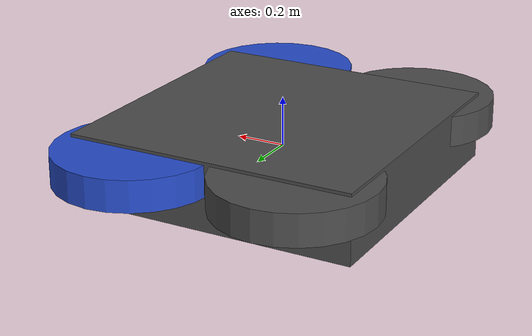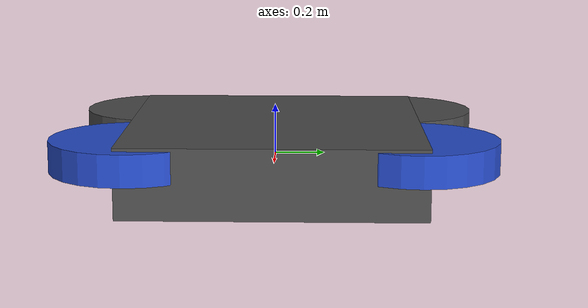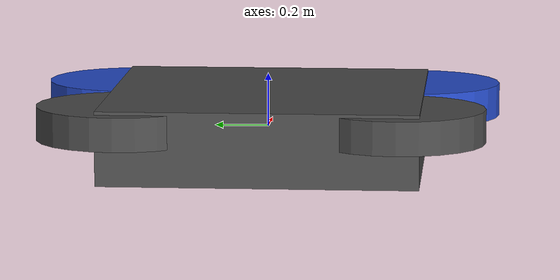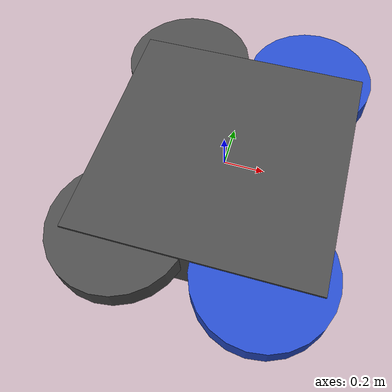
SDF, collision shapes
<?xml version="1.0" ?>
<sdf version="1.5">
  <model name='mbzirc_2_sensors'>
    <include>
      <uri>model://mbzirc_2</uri>
    </include>

    <include>
      <uri>model://real_sense_d435i</uri>
      <pose>0 0.25 -0.1 1.57079633 1.57079633 0</pose>
    </include>
    <joint name="depth_camera_joint" type="fixed">
      <parent>mbzirc_2::base_link</parent>
      <child>real_sense_d435i::link</child>
      <axis>
        <xyz>0 0 1</xyz>
        <limit>
          <upper>0</upper>
          <lower>0</lower>
        </limit>
      </axis>
    </joint>

    <include>
      <uri>model://Ocam</uri>
      <pose>0 0 -0.1 0 1.57079633 0</pose>
    </include>
    <joint name="camera_joint" type="fixed">
      <parent>mbzirc_2::base_link</parent>
      <child>Ocam::link</child>
      <axis>
        <xyz>0 0 1</xyz>
        <limit>
          <upper>0</upper>
          <lower>0</lower>
        </limit>
      </axis>
    </joint>

    <include>
      <uri>model://lite_lidar_left</uri>
      <pose>0 0.35 -0.1 0 0 0</pose>
    </include>
    <joint name="lidar_left_joint" type="fixed">
      <parent>mbzirc_2::base_link</parent>
      <child>lite_lidar_left::link</child>
      <axis>
        <xyz>0 0 1</xyz>
        <limit>
          <upper>0</upper>
          <lower>0</lower>
        </limit>
      </axis>
    </joint>

    <include>
      <uri>model://lite_lidar_right</uri>
      <pose>0 -0.35 -0.1 0 0 0</pose>
    </include>
    <joint name="lidar_right_joint" type="fixed">
      <parent>mbzirc_2::base_link</parent>
      <child>lite_lidar_right::link</child>
      <axis>
        <xyz>0 0 1</xyz>
        <limit>
          <upper>0</upper>
          <lower>0</lower>
        </limit>
      </axis>
    </joint>

  </model>
</sdf>

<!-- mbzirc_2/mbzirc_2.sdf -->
<sdf version='1.6'>
  <model name='mbzirc_2'>
    <link name='base_link'>
      <pose frame=''>0 0 0 0 -0 0</pose>
      <inertial>
        <pose frame=''>0 0 0 0 -0 0</pose>
        <mass>1.5</mass>
        <inertia>
          <ixx>0.0728125</ixx>
          <ixy>0</ixy>
          <ixz>0</ixz>
          <iyy>0.0728125</iyy>
          <iyz>0</iyz>
          <izz>0.1380625</izz>
        </inertia>
      </inertial>
      <collision name='base_link_inertia_collision'>
        <pose frame=''>0 0 0 0 -0 0</pose>
        <geometry>
          <box>
            <size>1.175 1.175 0.275</size>
          </box>
        </geometry>
        <surface>
          <contact>
            <ode>
              <min_depth>0.001</min_depth>
              <max_vel>0</max_vel>
            </ode>
          </contact>
          <friction>
            <ode/>
          </friction>
        </surface>
      </collision>
      <visual name='base_link_inertia_visual'>
        <pose frame=''>0 0 0 0 -0 0</pose>
        <geometry>
          <mesh>
            <scale>2.5 2.5 2.5</scale>
            <uri>model://rotors_description/meshes/iris.stl</uri>
          </mesh>
        </geometry>
        <material>
          <script>
            <name>Gazebo/DarkGrey</name>
            <uri>file://media/materials/scripts/gazebo.material</uri>
          </script>
        </material>
      </visual>
      <gravity>1</gravity>
      <velocity_decay/>
    </link>
    <link name='/imu_link'>
      <pose frame=''>0 0 0 0 -0 0</pose>
      <inertial>
        <pose frame=''>0 0 0 0 -0 0</pose>
        <mass>0.015</mass>
        <inertia>
          <ixx>1e-05</ixx>
          <ixy>0</ixy>
          <ixz>0</ixz>
          <iyy>1e-05</iyy>
          <iyz>0</iyz>
          <izz>1e-05</izz>
        </inertia>
      </inertial>
    </link>
    <joint name='/imu_joint' type='revolute'>
      <child>/imu_link</child>
      <parent>base_link</parent>
      <axis>
        <xyz>1 0 0</xyz>
        <limit>
          <lower>0</lower>
          <upper>0</upper>
          <effort>0</effort>
          <velocity>0</velocity>
        </limit>
        <dynamics>
          <spring_reference>0</spring_reference>
          <spring_stiffness>0</spring_stiffness>
        </dynamics>
        <use_parent_model_frame>1</use_parent_model_frame>
      </axis>
    </joint>
    <link name='rotor_0'>
      <pose frame=''>0.325 -0.55 0.0625 0 -0 0</pose>
      <inertial>
        <pose frame=''>0 0 0 0 -0 0</pose>
        <mass>0.005</mass>
        <inertia>
          <ixx>9.75e-07</ixx>
          <ixy>0</ixy>
          <ixz>0</ixz>
          <iyy>0.000273104</iyy>
          <iyz>0</iyz>
          <izz>0.000274004</izz>
        </inertia>
      </inertial>
      <collision name='rotor_0_collision'>
        <pose frame=''>0 0 0 0 -0 0</pose>
        <geometry>
          <cylinder>
            <length>0.125</length>
            <radius>0.32</radius>
          </cylinder>
        </geometry>
        <surface>
          <contact>
            <ode/>
          </contact>
          <friction>
            <ode/>
          </friction>
        </surface>
      </collision>
      <visual name='rotor_0_visual'>
        <pose frame=''>0 0 0 0 -0 0</pose>
        <geometry>
          <mesh>
            <scale>2.5 2.5 2.5</scale>
            <uri>model://rotors_description/meshes/iris_prop_ccw.dae</uri>
          </mesh>
        </geometry>
        <material>
          <script>
            <name>Gazebo/Blue</name>
            <uri>file://media/materials/scripts/gazebo.material</uri>
          </script>
        </material>
      </visual>
      <gravity>1</gravity>
      <velocity_decay/>
    </link>
    <joint name='rotor_0_joint' type='revolute'>
      <child>rotor_0</child>
      <parent>base_link</parent>
      <axis>
        <xyz>0 0 1</xyz>
        <limit>
          <lower>-1e+16</lower>
          <upper>1e+16</upper>
        </limit>
        <dynamics>
          <spring_reference>0</spring_reference>
          <spring_stiffness>0</spring_stiffness>
        </dynamics>
        <use_parent_model_frame>1</use_parent_model_frame>
      </axis>
    </joint>
    <link name='rotor_1'>
      <pose frame=''>-0.335 0.515 0.0625 0 -0 0</pose>
      <inertial>
        <pose frame=''>0 0 0 0 -0 0</pose>
        <mass>0.005</mass>
        <inertia>
          <ixx>9.75e-07</ixx>
          <ixy>0</ixy>
          <ixz>0</ixz>
          <iyy>0.000273104</iyy>
          <iyz>0</iyz>
          <izz>0.000274004</izz>
        </inertia>
      </inertial>
      <collision name='rotor_1_collision'>
        <pose frame=''>0 0 0 0 -0 0</pose>
        <geometry>
          <cylinder>
            <length>0.125</length>
            <radius>0.32</radius>
          </cylinder>
        </geometry>
        <surface>
          <contact>
            <ode/>
          </contact>
          <friction>
            <ode/>
          </friction>
        </surface>
      </collision>
      <visual name='rotor_1_visual'>
        <pose frame=''>0 0 0 0 -0 0</pose>
        <geometry>
          <mesh>
            <scale>2.5 2.5 2.5</scale>
            <uri>model://rotors_description/meshes/iris_prop_ccw.dae</uri>
          </mesh>
        </geometry>
        <material>
          <script>
            <name>Gazebo/DarkGrey</name>
            <uri>file://media/materials/scripts/gazebo.material</uri>
          </script>
        </material>
      </visual>
      <gravity>1</gravity>
      <velocity_decay/>
    </link>
    <joint name='rotor_1_joint' type='revolute'>
      <child>rotor_1</child>
      <parent>base_link</parent>
      <axis>
        <xyz>0 0 1</xyz>
        <limit>
          <lower>-1e+16</lower>
          <upper>1e+16</upper>
        </limit>
        <dynamics>
          <spring_reference>0</spring_reference>
          <spring_stiffness>0</spring_stiffness>
        </dynamics>
        <use_parent_model_frame>1</use_parent_model_frame>
      </axis>
    </joint>
    <link name='rotor_2'>
      <pose frame=''>0.315 0.555 0.0625 0 -0 0</pose>
      <inertial>
        <pose frame=''>0 0 0 0 -0 0</pose>
        <mass>0.005</mass>
        <inertia>
          <ixx>9.75e-07</ixx>
          <ixy>0</ixy>
          <ixz>0</ixz>
          <iyy>0.000273104</iyy>
          <iyz>0</iyz>
          <izz>0.000274004</izz>
        </inertia>
      </inertial>
      <collision name='rotor_2_collision'>
        <pose frame=''>0 0 0 0 -0 0</pose>
        <geometry>
          <cylinder>
            <length>0.125</length>
            <radius>0.32</radius>
          </cylinder>
        </geometry>
        <surface>
          <contact>
            <ode/>
          </contact>
          <friction>
            <ode/>
          </friction>
        </surface>
      </collision>
      <visual name='rotor_2_visual'>
        <pose frame=''>0 0 0 0 -0 0</pose>
        <geometry>
          <mesh>
            <scale>2.5 2.5 2.5</scale>
            <uri>model://rotors_description/meshes/iris_prop_cw.dae</uri>
          </mesh>
        </geometry>
        <material>
          <script>
            <name>Gazebo/Blue</name>
            <uri>file://media/materials/scripts/gazebo.material</uri>
          </script>
        </material>
      </visual>
      <gravity>1</gravity>
      <velocity_decay/>
    </link>
    <joint name='rotor_2_joint' type='revolute'>
      <child>rotor_2</child>
      <parent>base_link</parent>
      <axis>
        <xyz>0 0 1</xyz>
        <limit>
          <lower>-1e+16</lower>
          <upper>1e+16</upper>
        </limit>
        <dynamics>
          <spring_reference>0</spring_reference>
          <spring_stiffness>0</spring_stiffness>
        </dynamics>
        <use_parent_model_frame>1</use_parent_model_frame>
      </axis>
    </joint>
    <link name='rotor_3'>
      <pose frame=''>-0.345 -0.505 0.0625 0 -0 0</pose>
      <inertial>
        <pose frame=''>0 0 0 0 -0 0</pose>
        <mass>0.005</mass>
        <inertia>
          <ixx>9.75e-07</ixx>
          <ixy>0</ixy>
          <ixz>0</ixz>
          <iyy>0.000273104</iyy>
          <iyz>0</iyz>
          <izz>0.000274004</izz>
        </inertia>
      </inertial>
      <collision name='rotor_3_collision'>
        <pose frame=''>0 0 0 0 -0 0</pose>
        <geometry>
          <cylinder>
            <length>0.125</length>
            <radius>0.32</radius>
          </cylinder>
        </geometry>
        <surface>
          <contact>
            <ode/>
          </contact>
          <friction>
            <ode/>
          </friction>
        </surface>
      </collision>
      <visual name='rotor_3_visual'>
        <pose frame=''>0 0 0 0 -0 0</pose>
        <geometry>
          <mesh>
            <scale>2.5 2.5 2.5</scale>
            <uri>model://rotors_description/meshes/iris_prop_cw.dae</uri>
          </mesh>
        </geometry>
        <material>
          <script>
            <name>Gazebo/DarkGrey</name>
            <uri>file://media/materials/scripts/gazebo.material</uri>
          </script>
        </material>
      </visual>
      <gravity>1</gravity>
      <velocity_decay/>
    </link>
    <joint name='rotor_3_joint' type='revolute'>
      <child>rotor_3</child>
      <parent>base_link</parent>
      <axis>
        <xyz>0 0 1</xyz>
        <limit>
          <lower>-1e+16</lower>
          <upper>1e+16</upper>
        </limit>
        <dynamics>
          <spring_reference>0</spring_reference>
          <spring_stiffness>0</spring_stiffness>
        </dynamics>
        <use_parent_model_frame>1</use_parent_model_frame>
      </axis>
    </joint>
    <plugin name='rosbag' filename='libgazebo_multirotor_base_plugin.so'>
      <robotNamespace/>
      <linkName>base_link</linkName>
      <rotorVelocitySlowdownSim>10</rotorVelocitySlowdownSim>
    </plugin>
    <plugin name='front_right_motor_model' filename='libgazebo_motor_model.so'>
      <robotNamespace/>
      <jointName>rotor_0_joint</jointName>
      <linkName>rotor_0</linkName>
      <turningDirection>ccw</turningDirection>
      <timeConstantUp>0.0125</timeConstantUp>
      <timeConstantDown>0.025</timeConstantDown>
      <maxRotVelocity>1100</maxRotVelocity>
      <motorConstant>8.54858e-06</motorConstant>
      <momentConstant>0.06</momentConstant>
      <commandSubTopic>/gazebo/command/motor_speed</commandSubTopic>
      <motorNumber>0</motorNumber>
      <rotorDragCoefficient>0.000806428</rotorDragCoefficient>
      <rollingMomentCoefficient>1e-06</rollingMomentCoefficient>
      <motorSpeedPubTopic>/motor_speed/0</motorSpeedPubTopic>
      <rotorVelocitySlowdownSim>10</rotorVelocitySlowdownSim>
    </plugin>
    <plugin name='back_left_motor_model' filename='libgazebo_motor_model.so'>
      <robotNamespace/>
      <jointName>rotor_1_joint</jointName>
      <linkName>rotor_1</linkName>
      <turningDirection>ccw</turningDirection>
      <timeConstantUp>0.0125</timeConstantUp>
      <timeConstantDown>0.025</timeConstantDown>
      <maxRotVelocity>1100</maxRotVelocity>
      <motorConstant>8.54858e-06</motorConstant>
      <momentConstant>0.06</momentConstant>
      <commandSubTopic>/gazebo/command/motor_speed</commandSubTopic>
      <motorNumber>1</motorNumber>
      <rotorDragCoefficient>0.000806428</rotorDragCoefficient>
      <rollingMomentCoefficient>1e-06</rollingMomentCoefficient>
      <motorSpeedPubTopic>/motor_speed/1</motorSpeedPubTopic>
      <rotorVelocitySlowdownSim>10</rotorVelocitySlowdownSim>
    </plugin>
    <plugin name='front_left_motor_model' filename='libgazebo_motor_model.so'>
      <robotNamespace/>
      <jointName>rotor_2_joint</jointName>
      <linkName>rotor_2</linkName>
      <turningDirection>cw</turningDirection>
      <timeConstantUp>0.0125</timeConstantUp>
      <timeConstantDown>0.025</timeConstantDown>
      <maxRotVelocity>1100</maxRotVelocity>
      <motorConstant>8.54858e-06</motorConstant>
      <momentConstant>0.06</momentConstant>
      <commandSubTopic>/gazebo/command/motor_speed</commandSubTopic>
      <motorNumber>2</motorNumber>
      <rotorDragCoefficient>0.000806428</rotorDragCoefficient>
      <rollingMomentCoefficient>1e-06</rollingMomentCoefficient>
      <motorSpeedPubTopic>/motor_speed/2</motorSpeedPubTopic>
      <rotorVelocitySlowdownSim>10</rotorVelocitySlowdownSim>
    </plugin>
    <plugin name='back_right_motor_model' filename='libgazebo_motor_model.so'>
      <robotNamespace/>
      <jointName>rotor_3_joint</jointName>
      <linkName>rotor_3</linkName>
      <turningDirection>cw</turningDirection>
      <timeConstantUp>0.0125</timeConstantUp>
      <timeConstantDown>0.025</timeConstantDown>
      <maxRotVelocity>1100</maxRotVelocity>
      <motorConstant>8.54858e-06</motorConstant>
      <momentConstant>0.06</momentConstant>
      <commandSubTopic>/gazebo/command/motor_speed</commandSubTopic>
      <motorNumber>3</motorNumber>
      <rotorDragCoefficient>0.000806428</rotorDragCoefficient>
      <rollingMomentCoefficient>1e-06</rollingMomentCoefficient>
      <motorSpeedPubTopic>/motor_speed/3</motorSpeedPubTopic>
      <rotorVelocitySlowdownSim>10</rotorVelocitySlowdownSim>
    </plugin>
    <plugin name='gps_plugin' filename='libgazebo_gps_plugin.so'>
      <robotNamespace/>
      <gpsNoise>1</gpsNoise>
    </plugin>
    <plugin name='magnetometer_plugin' filename='libgazebo_magnetometer_plugin.so'>
      <robotNamespace/>
      <pubRate>20</pubRate>
      <noiseDensity>0.0004</noiseDensity>
      <randomWalk>6.4e-06</randomWalk>
      <biasCorrelationTime>600</biasCorrelationTime>
      <magTopic>/mag</magTopic>
    </plugin>
    <plugin name='barometer_plugin' filename='libgazebo_barometer_plugin.so'>
      <robotNamespace/>
      <pubRate>10</pubRate>
      <baroTopic>/baro</baroTopic>
    </plugin>
    <plugin name='mavlink_interface' filename='libgazebo_mavlink_interface.so'>
      <robotNamespace/>
      <imuSubTopic>/imu</imuSubTopic>
      <gpsSubTopic>/gps</gpsSubTopic>
      <magSubTopic>/mag</magSubTopic>
      <baroSubTopic>/baro</baroSubTopic>
      <mavlink_addr>INADDR_ANY</mavlink_addr>
      <mavlink_udp_port>14560</mavlink_udp_port>
      <mavlink_tcp_port>4560</mavlink_tcp_port>
      <serialEnabled>0</serialEnabled>
      <serialDevice>/dev/ttyACM0</serialDevice>
      <baudRate>921600</baudRate>
      <qgc_addr>INADDR_ANY</qgc_addr>
      <qgc_udp_port>14550</qgc_udp_port>
      <sdk_addr>INADDR_ANY</sdk_addr>
      <sdk_udp_port>14540</sdk_udp_port>
      <hil_mode>0</hil_mode>
      <hil_state_level>0</hil_state_level>
      <vehicle_is_tailsitter>0</vehicle_is_tailsitter>
      <send_vision_estimation>1</send_vision_estimation>
      <send_odometry>0</send_odometry>
      <enable_lockstep>1</enable_lockstep>
      <use_tcp>1</use_tcp>
      <motorSpeedCommandPubTopic>/gazebo/command/motor_speed</motorSpeedCommandPubTopic>
      <control_channels>
        <channel name='rotor1'>
          <input_index>0</input_index>
          <input_offset>0</input_offset>
          <input_scaling>1000</input_scaling>
          <zero_position_disarmed>0</zero_position_disarmed>
          <zero_position_armed>100</zero_position_armed>
          <joint_control_type>velocity</joint_control_type>
        </channel>
        <channel name='rotor2'>
          <input_index>1</input_index>
          <input_offset>0</input_offset>
          <input_scaling>1000</input_scaling>
          <zero_position_disarmed>0</zero_position_disarmed>
          <zero_position_armed>100</zero_position_armed>
          <joint_control_type>velocity</joint_control_type>
        </channel>
        <channel name='rotor3'>
          <input_index>2</input_index>
          <input_offset>0</input_offset>
          <input_scaling>1000</input_scaling>
          <zero_position_disarmed>0</zero_position_disarmed>
          <zero_position_armed>100</zero_position_armed>
          <joint_control_type>velocity</joint_control_type>
        </channel>
        <channel name='rotor4'>
          <input_index>3</input_index>
          <input_offset>0</input_offset>
          <input_scaling>1000</input_scaling>
          <zero_position_disarmed>0</zero_position_disarmed>
          <zero_position_armed>100</zero_position_armed>
          <joint_control_type>velocity</joint_control_type>
        </channel>
        <channel name='rotor5'>
          <input_index>4</input_index>
          <input_offset>1</input_offset>
          <input_scaling>324.6</input_scaling>
          <zero_position_disarmed>0</zero_position_disarmed>
          <zero_position_armed>0</zero_position_armed>
          <joint_control_type>velocity</joint_control_type>
          <joint_control_pid>
            <p>0.1</p>
            <i>0</i>
            <d>0</d>
            <iMax>0.0</iMax>
            <iMin>0.0</iMin>
            <cmdMax>2</cmdMax>
            <cmdMin>-2</cmdMin>
          </joint_control_pid>
          <joint_name>zephyr_delta_wing::propeller_joint</joint_name>
        </channel>
        <channel name='rotor6'>
          <input_index>5</input_index>
          <input_offset>0</input_offset>
          <input_scaling>0.524</input_scaling>
          <zero_position_disarmed>0</zero_position_disarmed>
          <zero_position_armed>0</zero_position_armed>
          <joint_control_type>position</joint_control_type>
          <joint_name>zephyr_delta_wing::flap_left_joint</joint_name>
          <joint_control_pid>
            <p>10.0</p>
            <i>0</i>
            <d>0</d>
            <iMax>0</iMax>
            <iMin>0</iMin>
            <cmdMax>20</cmdMax>
            <cmdMin>-20</cmdMin>
          </joint_control_pid>
        </channel>
        <channel name='rotor7'>
          <input_index>6</input_index>
          <input_offset>0</input_offset>
          <input_scaling>0.524</input_scaling>
          <zero_position_disarmed>0</zero_position_disarmed>
          <zero_position_armed>0</zero_position_armed>
          <joint_control_type>position</joint_control_type>
          <joint_name>zephyr_delta_wing::flap_right_joint</joint_name>
          <joint_control_pid>
            <p>10.0</p>
            <i>0</i>
            <d>0</d>
            <iMax>0</iMax>
            <iMin>0</iMin>
            <cmdMax>20</cmdMax>
            <cmdMin>-20</cmdMin>
          </joint_control_pid>
        </channel>
        <channel name='rotor8'>
          <input_index>7</input_index>
          <input_offset>0</input_offset>
          <input_scaling>0.524</input_scaling>
          <zero_position_disarmed>0</zero_position_disarmed>
          <zero_position_armed>0</zero_position_armed>
          <joint_control_type>position</joint_control_type>
        </channel>
      </control_channels>
    </plugin>
    <static>0</static>
    <plugin name='rotors_gazebo_imu_plugin' filename='libgazebo_imu_plugin.so'>
      <robotNamespace/>
      <linkName>/imu_link</linkName>
      <imuTopic>/imu</imuTopic>
      <gyroscopeNoiseDensity>0.00018665</gyroscopeNoiseDensity>
      <gyroscopeRandomWalk>3.8785e-05</gyroscopeRandomWalk>
      <gyroscopeBiasCorrelationTime>1000.0</gyroscopeBiasCorrelationTime>
      <gyroscopeTurnOnBiasSigma>0.0087</gyroscopeTurnOnBiasSigma>
      <accelerometerNoiseDensity>0.00186</accelerometerNoiseDensity>
      <accelerometerRandomWalk>0.006</accelerometerRandomWalk>
      <accelerometerBiasCorrelationTime>300.0</accelerometerBiasCorrelationTime>
      <accelerometerTurnOnBiasSigma>0.196</accelerometerTurnOnBiasSigma>
    </plugin>
  </model>
</sdf>

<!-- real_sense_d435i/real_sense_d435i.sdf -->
<sdf version="1.5">
  <model name="real_sense_d435i">
    <pose>0 0 0.035 0 0 0</pose>
    <link name="link">
      <inertial>
        <pose>0.01 0.025 0.025 0 0 0</pose>
        <mass>0.01</mass>
        <inertia>
          <ixx>4.15e-6</ixx>
          <ixy>0</ixy>
          <ixz>0</ixz>
          <iyy>2.407e-6</iyy>
          <iyz>0</iyz>
          <izz>2.407e-6</izz>
        </inertia>
      </inertial>

      <visual name="visual">
        <pose>0 0 0 0 0 0</pose>
        <geometry>
          <mesh>
            <uri>model://realsense_camera/meshes/realsense.dae</uri>
          </mesh>
        </geometry>
      </visual>

      <sensor name="depth_camera" type="depth">
        <update_rate>30</update_rate>
        <camera>
          <horizontal_fov>1.518436</horizontal_fov>
          <image>
            <format>R8G8B8</format>
            <width>640</width>
            <height>480</height>
          </image>
          <clip>
            <near>0.1</near>
            <far>10</far>
          </clip>
        </camera>
        <plugin filename="libgazebo_ros_openni_kinect.so" name="camera_controller">
          <cameraName>camera</cameraName>
          <alwaysOn>true</alwaysOn>
          <updateRate>30</updateRate>
          <pointCloudCutoff>0.2</pointCloudCutoff>
          <pointCloudCutoffMax>20</pointCloudCutoffMax>
          <imageTopicName>color/image_raw</imageTopicName>
          <cameraInfoTopicName>color/camera_info</cameraInfoTopicName>
          <depthImageTopicName>aligned_depth_to_color/image_raw</depthImageTopicName>
          <depthImageCameraInfoTopicName>aligned_depth_to_color/camera_info</depthImageCameraInfoTopicName>
          <pointCloudTopicName>aligned_depth_to_color/points</pointCloudTopicName>
          <frameName>camera_link</frameName>
          <distortion_k1>0.0</distortion_k1>
          <distortion_k2>0.0</distortion_k2>
          <distortion_k3>0.0</distortion_k3>
          <distortion_t1>0.0</distortion_t1>
          <distortion_t2>0.0</distortion_t2>
        </plugin>
      </sensor>
    </link>
  </model>
</sdf>

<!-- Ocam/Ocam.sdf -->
<sdf version="1.5">
  <model name="Ocam">
    <pose>0 0 0.0 0 0 0</pose>
    <link name='link'>
      <inertial>
        <mass>0.001</mass>
        <inertia>
          <ixx>4.15e-06</ixx>
          <ixy>0</ixy>
          <ixz>0</ixz>
          <iyy>2.407e-06</iyy>
          <iyz>0</iyz>
          <izz>2.407e-06</izz>
        </inertia>
      </inertial>

      <collision name="collision">
        <pose>0 0 0.0 0 0.0 0</pose>
        <geometry>
          <box>
            <size>0.02 0.024 0.02</size>
          </box>
        </geometry>
      </collision>

      <visual name='visual'>
        <geometry>
          <box>
            <size>0.02 0.024 0.02</size>
          </box>
        </geometry>
        <material>
          <script>
            <name>Gazebo/DarkGrey</name>
            <uri>file://media/materials/scripts/gazebo.material</uri>
          </script>
        </material>
        <pose>0 0 0.0 0 0.0 0</pose>
        <cast_shadows>1</cast_shadows>
        <transparency>0</transparency>
      </visual>
      <self_collide>0</self_collide>
      <kinematic>0</kinematic>
      <sensor name='camera' type='wideanglecamera'>
        <update_rate>30</update_rate>
        <camera name='__default__'>
		  <horizontal_fov>1.619666</horizontal_fov>
          <image>
            <width>1920</width>
            <height>1080</height>
          </image>
          <clip>
            <near>0.01</near>
            <far>100</far>
          </clip>
          <lens>
			<env_texture_size>512</env_texture_size>
		  </lens>
        </camera>
        <plugin name='camera_controller' filename='libgazebo_ros_camera.so'>
          <cameraName>camera</cameraName>
          <imageTopicName>rgb/image_raw</imageTopicName>
          <cameraInfoTopicName>rgb/camera_info</cameraInfoTopicName>
          <frameName>camera::link</frameName>
        </plugin>
      </sensor>
    </link>
  </model>
</sdf>

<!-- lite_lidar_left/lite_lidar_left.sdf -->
<sdf version="1.5">
  <model name="lite_lidar_left">
    <pose>0 0 0 0 0 0</pose>
    <link name="link">
      <inertial>
        <pose>0 0 0 0 0 0</pose>
        <mass>0.01</mass>
        <inertia>
          <ixx>2.1733e-6</ixx>
          <ixy>0</ixy>
          <ixz>0</ixz>
          <iyy>2.1733e-6</iyy>
          <iyz>0</iyz>
          <izz>1.8e-7</izz>
        </inertia>
      </inertial>

      <collision name="collision">
        <pose>0 0 0.0 0 0.0 0</pose>
        <geometry>
          <box>
            <size>0.006 0.006 0.05</size>
          </box>
        </geometry>
      </collision>

      <visual name="visual">
        <geometry>
          <cylinder><radius>0.006</radius><length>0.05</length></cylinder>
        </geometry>
        <material>
          <script>
            <name>Gazebo/Black</name>
          </script>
        </material>
      </visual>

      <sensor name="laser" type="ray">
        <pose>0 0 0 0 1.57079633 0</pose>
        <ray>
          <scan>
            <horizontal>
              <samples>1</samples>
              <resolution>1</resolution>
              <min_angle>-0</min_angle>
              <max_angle>0</max_angle>
            </horizontal>
          </scan>
          <range>
            <min>0.06</min> <!-- do not change: use min_distance (below) for realistic behavior (smaller values cause issues) -->
            <max>35</max>   <!-- do not change: use min_distance (below) for realistic behavior (bigger values cause issues) -->
            <resolution>0.001</resolution>
          </range>
          <noise>
            <type>gaussian</type>
            <mean>0.0</mean>
            <stddev>0.025</stddev>
          </noise>
        </ray>
        <plugin name="laser" filename="libRayPlugin.so" />
        <plugin name="gazebo_ros_head_rplidar_controller" filename="libgazebo_ros_laser.so">
          <topicName>lidar_left/Altitude</topicName>
          <frameName>lidar_left/lite_lidar_link</frameName>
        </plugin>
        <always_on>1</always_on>
        <update_rate>100</update_rate>
        <visualize>true</visualize>
      </sensor>
    </link>
  </model>
</sdf>

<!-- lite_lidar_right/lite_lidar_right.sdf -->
<sdf version="1.5">
  <model name="lite_lidar_right">
    <pose>0 0 0 0 0 0</pose>
    <link name="link">
      <inertial>
        <pose>0 0 0 0 0 0</pose>
        <mass>0.01</mass>
        <inertia>
          <ixx>2.1733e-6</ixx>
          <ixy>0</ixy>
          <ixz>0</ixz>
          <iyy>2.1733e-6</iyy>
          <iyz>0</iyz>
          <izz>1.8e-7</izz>
        </inertia>
      </inertial>

      <collision name="collision">
        <pose>0 0 0.0 0 0.0 0</pose>
        <geometry>
          <box>
            <size>0.006 0.006 0.05</size>
          </box>
        </geometry>
      </collision>

      <visual name="visual">
        <geometry>
          <cylinder><radius>0.006</radius><length>0.05</length></cylinder>
        </geometry>
        <material>
          <script>
            <name>Gazebo/Black</name>
          </script>
        </material>
      </visual>

      <sensor name="laser" type="ray">
        <pose>0 0 0 0 1.57079633 0</pose>
        <ray>
          <scan>
            <horizontal>
              <samples>1</samples>
              <resolution>1</resolution>
              <min_angle>-0</min_angle>
              <max_angle>0</max_angle>
            </horizontal>
          </scan>
          <range>
            <min>0.06</min> <!-- do not change: use min_distance (below) for realistic behavior (smaller values cause issues) -->
            <max>35</max>   <!-- do not change: use min_distance (below) for realistic behavior (bigger values cause issues) -->
            <resolution>0.001</resolution>
          </range>
          <noise>
            <type>gaussian</type>
            <mean>0.0</mean>
            <stddev>0.025</stddev>
          </noise>
        </ray>
        <plugin name="laser" filename="libRayPlugin.so" />
        <plugin name="gazebo_ros_head_rplidar_controller" filename="libgazebo_ros_laser.so">
          <topicName>lidar_right/Altitude</topicName>
          <frameName>lidar_right/lite_lidar_link</frameName>
        </plugin>
        <always_on>1</always_on>
        <update_rate>100</update_rate>
        <visualize>true</visualize>
      </sensor>
    </link>
  </model>
</sdf>
